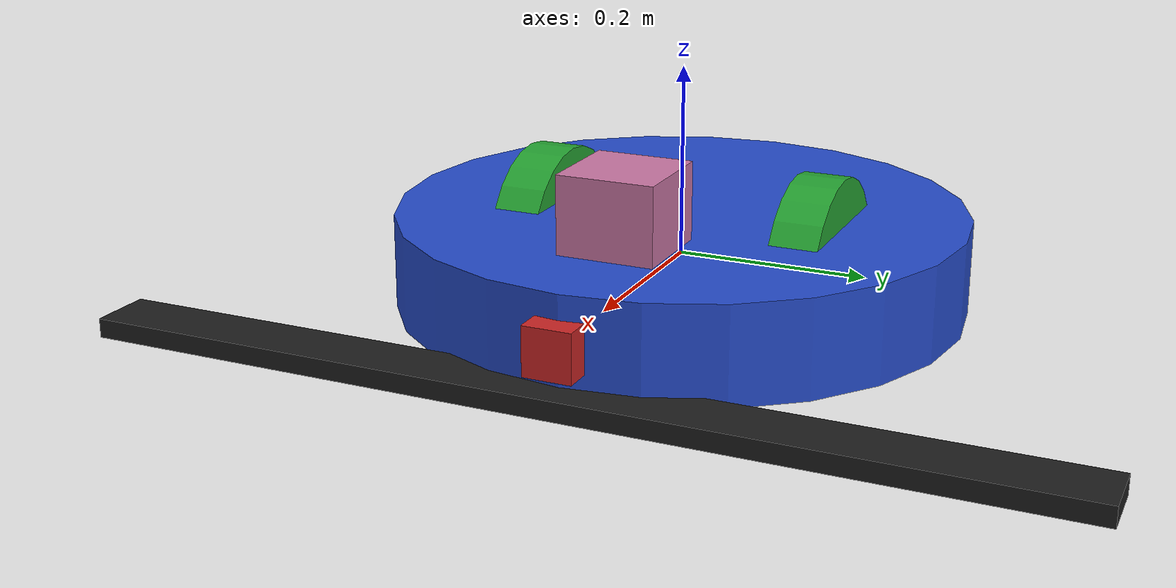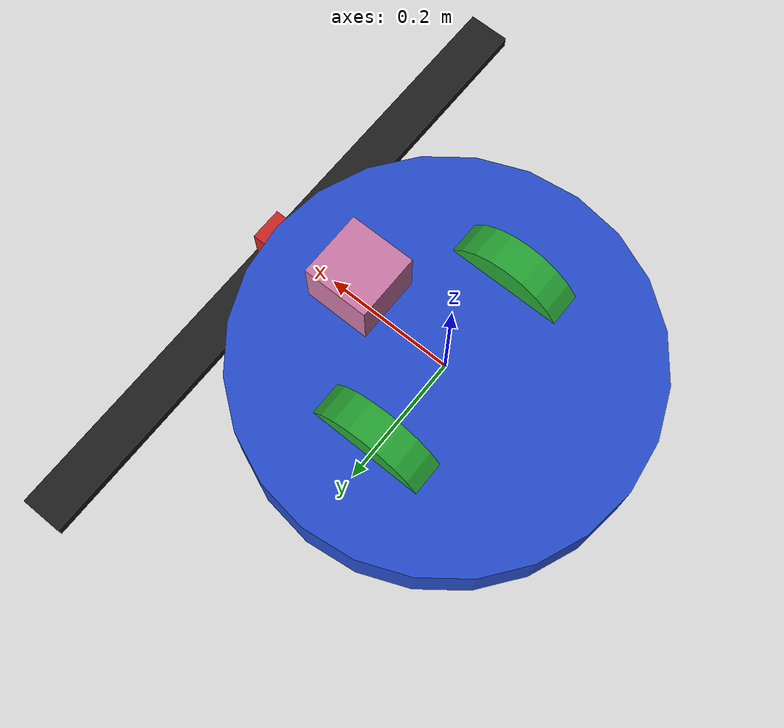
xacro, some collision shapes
<?xml version='1.0'?>

<robot name="my_robot" xmlns:xacro="http://www.ros.org/wiki/xacro">

	<xacro:include filename="$(find my_robot)/urdf/my_robot.gazebo"/>

	<link name="robot_footprint"></link>

	<joint name="robot_footprint_joint" type="fixed">
		<origin xyz="0 0 0" rpy="0 0 0"/>
		<parent link="robot_footprint"/>
		<child link="chassis"/>
	</joint>

	<link name="chassis">
		<pose>0 0 0.5 0 0 0</pose>

	<inertial>
		<mass value="15.0"/>
		<origin xyz="0.0 0 0" rpy=" 0 0 0"/>
		<inertia
			ixx="0.1" ixy="0" ixz="0"
			iyy="0.1" iyz="0"
			izz="0.1"
		/>
	</inertial>

	<collision name="chassis_collision">
		<origin xyz="0 0 0" rpy=" 0 0 0"/>
		<geometry>
			<cylinder length="0.1" radius="0.3"/>
		</geometry>
	</collision>

	<visual name="chassis_visual">
		<origin xyz="0 0 0" rpy=" 0 0 0"/>
		<geometry>
			<cylinder length="0.1" radius="0.3"/>
		</geometry>
	</visual>

	<collision name="back_caster_collision">
		<origin xyz="-0.15 0 -0.05" rpy=" 0 0 0"/>
		<geometry>
			<sphere radius="0.0499"/>
		</geometry>
	</collision>

	<visual name="back_caster_visual">
		<origin xyz="-0.15 0 -0.05" rpy=" 0 0 0"/>
		<geometry>
			<sphere radius="0.05"/>
		</geometry>
	</visual>

	<collision name="front_caster_collision">
		<origin xyz="0.15 0 -0.05" rpy=" 0 0 0"/>
		<geometry>
			<sphere radius="0.0499"/>
		</geometry>
	</collision>

	<visual name="front_caster_visual">
		<origin xyz="0.15 0 -0.05" rpy=" 0 0 0"/>
		<geometry>
			<sphere radius="0.05"/>
		</geometry>
	</visual>
	</link>

	<link name="bump_sensor">
		<collision name="bump_sensor_collision">
		<origin xyz="0 0 0" rpy="0 0 0"/>
		<geometry>
		<box size="0.065 1.0 0.02"/>
		</geometry>
		</collision>

		 <visual>
      			<origin xyz="0 0 0" rpy="0 0 0"/>
      			<geometry>
         			<box size="0.065 1.0 0.02"/>
      			</geometry>
    		</visual>

    		<inertial>
      			<mass value="1e-5" />
      			<origin xyz="0 0 0" rpy="0 0 0"/>
      		<inertia ixx="1e-6" ixy="0" ixz="0" iyy="1e-6" iyz="0" izz="1e-6" />
    		</inertial>
  	</link>

	<joint name="bumper_joint" type="fixed">
		<axis xyz="0 1 0"/>
		<origin xyz="0.3 0 -0.05" rpy="0 0 0"/>
		<parent link="chassis"/>
		<child link="bump_sensor"/>
	</joint>

	<link name="left_wheel">
		<inertial>
		<mass value="5.0"/>
		<origin xyz="0 0 0" rpy="0 1.5707 1.5707"/>
		<inertia
			ixx="0.1" ixy="0" ixz="0"
			iyy="0.1" iyz="0"
			izz="0.1"
		/>
		</inertial>

		<collision name="left_wheel_collision">
			<origin xyz="0 0 0" rpy="0 1.5707 1.5707"/>
			<geometry>
				<cylinder radius="0.1" length="0.05"/>
			</geometry>
		</collision>

		<visual name="left_wheel_visual">
			<origin xyz="0 0 0" rpy="0 1.5707 1.5707"/>
			<geometry>
				<cylinder radius="0.1" length="0.05"/>
			</geometry>
		</visual>
	</link>

	<link name="right_wheel">
		<inertial>
		<mass value="5.0"/>
		<origin xyz="0 0 0" rpy="0 1.5707 1.5707"/>
		<inertia
			ixx="0.1" ixy="0" ixz="0"
			iyy="0.1" iyz="0"
			izz="0.1"
		/>
		</inertial>

		<collision name="right_wheel_collision">
			<origin xyz="0 0 0" rpy="0 1.5707 1.5707"/>
			<geometry>
				<cylinder radius="0.1" length="0.05"/>
			</geometry>
		</collision>

		<visual name="right_wheel_visual">
			<origin xyz="0 0 0" rpy="0 1.5707 1.5707"/>
			<geometry>
				<cylinder radius="0.1" length="0.05"/>
			</geometry>
		</visual>
	</link>

	<joint type="continuous" name="left_wheel_hinge">
		<origin xyz="0 0.15 0" rpy="0 0 0"/>
		<child link="left_wheel"/>
		<parent link="chassis"/>
		<axis xyz="0 1 0" rpy="0 0 0"/>
		<limit effort="10000" velocity="1000"/>
		<dynamics damping="1.0" friction="1.0"/>
	</joint>

	<joint type="continuous" name="right_wheel_hinge">
		<origin xyz="0 -0.15 0" rpy="0 0 0"/>
		<child link="right_wheel"/>
		<parent link="chassis"/>
		<axis xyz="0 1 0" rpy="0 0 0"/>
		<limit effort="10000" velocity="1000"/>
		<dynamics damping="1.0" friction="1.0"/>
	</joint>

	<link name="camera">
		<inertial>
		<mass value="0.1"/>
		<origin xyz="0 0 0" rpy="0 0 0"/>
		<inertia
			ixx="1e-6" ixy="0" ixz="0"
			iyy="1e-6" iyz="0"
			izz="1e-6"/>
		</inertial>

		<collision name="camera_collision">
			<origin xyz="0 0 0" rpy="0 0 0"/>
			<geometry>
				<box size="0.05 0.05 0.05"/>
			</geometry>
		</collision>

		<visual name="camera_visual">
			<origin xyz="0 0 0" rpy="0 0 0"/>
			<geometry>
				<box size="0.05 0.05 0.05"/>
			</geometry>
		</visual>
	</link>

	<joint name="camera_joint" type="fixed">
		<axis xyz="0 1 0"/>
		<origin xyz="0.3 0 0" rpy="0 0 0"/>
		<parent link = "chassis"/>
		<child link="camera"/>
	</joint>

	<link name="hokuyo">
		<inertial>
		<mass value="1e-5"/>
		<origin xyz="0 0 0" rpy="0 0 0"/>
		<inertia
			ixx="1e-6" ixy="0" ixz="0"
			iyy="1e-6" iyz="0"
			izz="1e-6"/>
		</inertial>
		<collision name="hokuyo_collision">
			<origin xyz="0 0 0" rpy="0 0 0"/>
			<geometry>
				<box size="0.1 0.1 0.1"/>
			</geometry>
		</collision>
		<visual name="hokuyo_visual">
			<origin xyz="0 0 0" rpy="0 0 0"/>
			<geometry>
				<mesh filename="package://my_robot/meshes/hokuyo.dae"/>
			</geometry>
		</visual>
	</link>

	<joint name="hokuyo_joint" type="fixed">
		<axis xyz="0 1 0"/>
		<origin xyz="0.15 0 0.08" rpy="0 0 0"/>
		<parent link = "chassis"/>
		<child link="hokuyo"/>
	</joint>

	<gazebo reference="chassis">
		<material>Gazebo/Blue</material>
	</gazebo>

	<gazebo reference="left_wheel">
		<material>Gazebo/Green</material>
	</gazebo>

	<gazebo reference="right_wheel">
		<material>Gazebo/Green</material>
	</gazebo>

	<gazebo reference="camera">
		<material>Gazebo/Red</material>
	</gazebo>

	<gazebo reference="chassis">
		<material>Gazebo/Blue</material>
	</gazebo>

	<gazebo reference="bump_sensor">
		<material>Gazebo/Black</material>
	</gazebo>

</robot>
